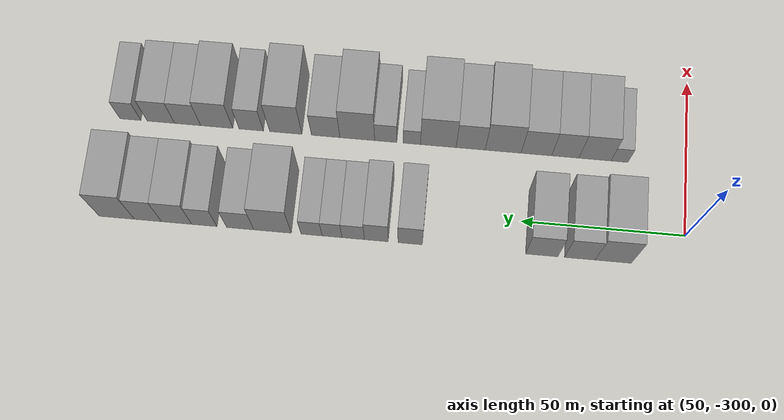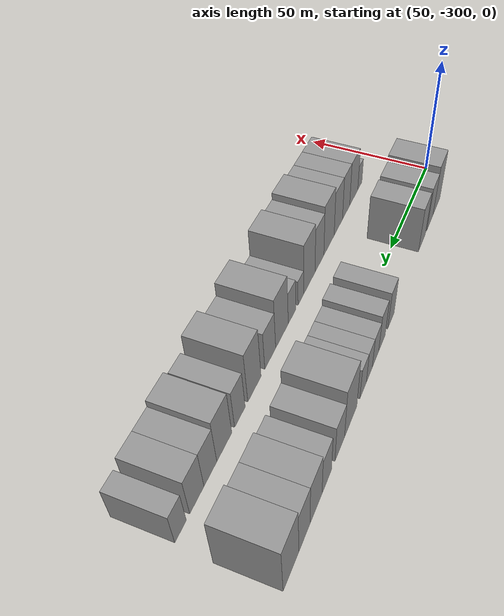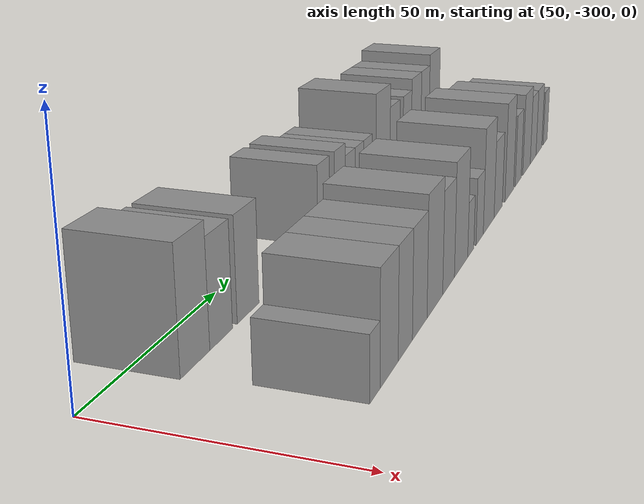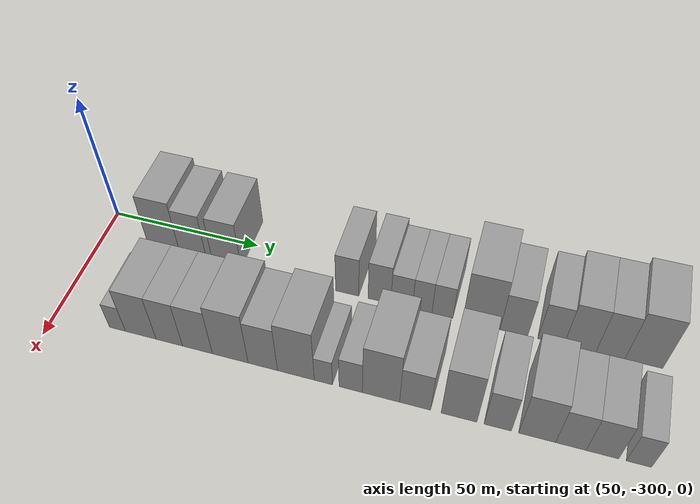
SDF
<sdf version="1.6">
 <world name="default">
  <model name="building_1">
   <static>1</static>
   <pose>50.0000 -278.4930 0 0.000000 0.000000 0.000000</pose>
   <link name="link">
    <pose>0 0 12.00 0 0 0</pose>
    <collision name="collision"><geometry><box><size>20.0000 11.0139 24.0000</size></box></geometry></collision>
    <visual name="visual">
     <cast_shadows>0</cast_shadows>
     <geometry><box><size>20.0000 11.0139 24.0000</size></box></geometry>
     <material>
      <script>
       <uri>model://grey_wall/materials/scripts</uri>
       <uri>model://grey_wall/materials/textures</uri>
       <name>vrc/grey_wall</name>
      </script>
     </material>
    </visual>
   </link>
  </model>
  <model name="building_2">
   <static>1</static>
   <pose>50.0000 -268.3517 0 0.000000 0.000000 0.000000</pose>
   <link name="link">
    <pose>0 0 10.50 0 0 0</pose>
    <collision name="collision"><geometry><box><size>20.0000 9.2688 21.0000</size></box></geometry></collision>
    <visual name="visual">
     <cast_shadows>0</cast_shadows>
     <geometry><box><size>20.0000 9.2688 21.0000</size></box></geometry>
     <material>
      <script>
       <uri>model://grey_wall/materials/scripts</uri>
       <uri>model://grey_wall/materials/textures</uri>
       <name>vrc/grey_wall</name>
      </script>
     </material>
    </visual>
   </link>
  </model>
  <model name="building_3">
   <static>1</static>
   <pose>50.0000 -256.8036 0 0.000000 0.000000 0.000000</pose>
   <link name="link">
    <pose>0 0 10.50 0 0 0</pose>
    <collision name="collision"><geometry><box><size>20.0000 9.8273 21.0000</size></box></geometry></collision>
    <visual name="visual">
     <cast_shadows>0</cast_shadows>
     <geometry><box><size>20.0000 9.8273 21.0000</size></box></geometry>
     <material>
      <script>
       <uri>model://grey_wall/materials/scripts</uri>
       <uri>model://grey_wall/materials/textures</uri>
       <name>vrc/grey_wall</name>
      </script>
     </material>
    </visual>
   </link>
  </model>
  <model name="building_4">
   <static>1</static>
   <pose>50.0000 -216.7169 0 0.000000 0.000000 0.000000</pose>
   <link name="link">
    <pose>0 0 9.00 0 0 0</pose>
    <collision name="collision"><geometry><box><size>20.0000 7.4487 18.0000</size></box></geometry></collision>
    <visual name="visual">
     <cast_shadows>0</cast_shadows>
     <geometry><box><size>20.0000 7.4487 18.0000</size></box></geometry>
     <material>
      <script>
       <uri>model://grey_wall/materials/scripts</uri>
       <uri>model://grey_wall/materials/textures</uri>
       <name>vrc/grey_wall</name>
      </script>
     </material>
    </visual>
   </link>
  </model>
  <model name="building_5">
   <static>1</static>
   <pose>50.0000 -206.3585 0 0.000000 0.000000 0.000000</pose>
   <link name="link">
    <pose>0 0 9.00 0 0 0</pose>
    <collision name="collision"><geometry><box><size>20.0000 7.2680 18.0000</size></box></geometry></collision>
    <visual name="visual">
     <cast_shadows>0</cast_shadows>
     <geometry><box><size>20.0000 7.2680 18.0000</size></box></geometry>
     <material>
      <script>
       <uri>model://grey_wall/materials/scripts</uri>
       <uri>model://grey_wall/materials/textures</uri>
       <name>vrc/grey_wall</name>
      </script>
     </material>
    </visual>
   </link>
  </model>
  <model name="building_6">
   <static>1</static>
   <pose>50.0000 -199.2980 0 0.000000 0.000000 0.000000</pose>
   <link name="link">
    <pose>0 0 7.50 0 0 0</pose>
    <collision name="collision"><geometry><box><size>20.0000 6.8530 15.0000</size></box></geometry></collision>
    <visual name="visual">
     <cast_shadows>0</cast_shadows>
     <geometry><box><size>20.0000 6.8530 15.0000</size></box></geometry>
     <material>
      <script>
       <uri>model://grey_wall/materials/scripts</uri>
       <uri>model://grey_wall/materials/textures</uri>
       <name>vrc/grey_wall</name>
      </script>
     </material>
    </visual>
   </link>
  </model>
  <model name="building_7">
   <static>1</static>
   <pose>50.0000 -192.8294 0 0.000000 0.000000 0.000000</pose>
   <link name="link">
    <pose>0 0 7.50 0 0 0</pose>
    <collision name="collision"><geometry><box><size>20.0000 6.0842 15.0000</size></box></geometry></collision>
    <visual name="visual">
     <cast_shadows>0</cast_shadows>
     <geometry><box><size>20.0000 6.0842 15.0000</size></box></geometry>
     <material>
      <script>
       <uri>model://grey_wall/materials/scripts</uri>
       <uri>model://grey_wall/materials/textures</uri>
       <name>vrc/grey_wall</name>
      </script>
     </material>
    </visual>
   </link>
  </model>
  <model name="building_8">
   <static>1</static>
   <pose>50.0000 -186.5375 0 0.000000 0.000000 0.000000</pose>
   <link name="link">
    <pose>0 0 7.50 0 0 0</pose>
    <collision name="collision"><geometry><box><size>20.0000 6.4996 15.0000</size></box></geometry></collision>
    <visual name="visual">
     <cast_shadows>0</cast_shadows>
     <geometry><box><size>20.0000 6.4996 15.0000</size></box></geometry>
     <material>
      <script>
       <uri>model://grey_wall/materials/scripts</uri>
       <uri>model://grey_wall/materials/textures</uri>
       <name>vrc/grey_wall</name>
      </script>
     </material>
    </visual>
   </link>
  </model>
  <model name="building_9">
   <static>1</static>
   <pose>50.0000 -174.5439 0 0.000000 0.000000 0.000000</pose>
   <link name="link">
    <pose>0 0 12.00 0 0 0</pose>
    <collision name="collision"><geometry><box><size>20.0000 11.4876 24.0000</size></box></geometry></collision>
    <visual name="visual">
     <cast_shadows>0</cast_shadows>
     <geometry><box><size>20.0000 11.4876 24.0000</size></box></geometry>
     <material>
      <script>
       <uri>model://grey_wall/materials/scripts</uri>
       <uri>model://grey_wall/materials/textures</uri>
       <name>vrc/grey_wall</name>
      </script>
     </material>
    </visual>
   </link>
  </model>
  <model name="building_10">
   <static>1</static>
   <pose>50.0000 -164.6084 0 0.000000 0.000000 0.000000</pose>
   <link name="link">
    <pose>0 0 9.00 0 0 0</pose>
    <collision name="collision"><geometry><box><size>20.0000 8.3834 18.0000</size></box></geometry></collision>
    <visual name="visual">
     <cast_shadows>0</cast_shadows>
     <geometry><box><size>20.0000 8.3834 18.0000</size></box></geometry>
     <material>
      <script>
       <uri>model://grey_wall/materials/scripts</uri>
       <uri>model://grey_wall/materials/textures</uri>
       <name>vrc/grey_wall</name>
      </script>
     </material>
    </visual>
   </link>
  </model>
  <model name="building_11">
   <static>1</static>
   <pose>50.0000 -153.5251 0 0.000000 0.000000 0.000000</pose>
   <link name="link">
    <pose>0 0 9.00 0 0 0</pose>
    <collision name="collision"><geometry><box><size>20.0000 7.7832 18.0000</size></box></geometry></collision>
    <visual name="visual">
     <cast_shadows>0</cast_shadows>
     <geometry><box><size>20.0000 7.7832 18.0000</size></box></geometry>
     <material>
      <script>
       <uri>model://grey_wall/materials/scripts</uri>
       <uri>model://grey_wall/materials/textures</uri>
       <name>vrc/grey_wall</name>
      </script>
     </material>
    </visual>
   </link>
  </model>
  <model name="building_12">
   <static>1</static>
   <pose>50.0000 -144.9641 0 0.000000 0.000000 0.000000</pose>
   <link name="link">
    <pose>0 0 10.50 0 0 0</pose>
    <collision name="collision"><geometry><box><size>20.0000 9.3388 21.0000</size></box></geometry></collision>
    <visual name="visual">
     <cast_shadows>0</cast_shadows>
     <geometry><box><size>20.0000 9.3388 21.0000</size></box></geometry>
     <material>
      <script>
       <uri>model://grey_wall/materials/scripts</uri>
       <uri>model://grey_wall/materials/textures</uri>
       <name>vrc/grey_wall</name>
      </script>
     </material>
    </visual>
   </link>
  </model>
  <model name="building_13">
   <static>1</static>
   <pose>50.0000 -136.0853 0 0.000000 0.000000 0.000000</pose>
   <link name="link">
    <pose>0 0 10.50 0 0 0</pose>
    <collision name="collision"><geometry><box><size>20.0000 8.4189 21.0000</size></box></geometry></collision>
    <visual name="visual">
     <cast_shadows>0</cast_shadows>
     <geometry><box><size>20.0000 8.4189 21.0000</size></box></geometry>
     <material>
      <script>
       <uri>model://grey_wall/materials/scripts</uri>
       <uri>model://grey_wall/materials/textures</uri>
       <name>vrc/grey_wall</name>
      </script>
     </material>
    </visual>
   </link>
  </model>
  <model name="building_14">
   <static>1</static>
   <pose>50.0000 -126.4248 0 0.000000 0.000000 0.000000</pose>
   <link name="link">
    <pose>0 0 12.00 0 0 0</pose>
    <collision name="collision"><geometry><box><size>20.0000 10.9022 24.0000</size></box></geometry></collision>
    <visual name="visual">
     <cast_shadows>0</cast_shadows>
     <geometry><box><size>20.0000 10.9022 24.0000</size></box></geometry>
     <material>
      <script>
       <uri>model://grey_wall/materials/scripts</uri>
       <uri>model://grey_wall/materials/textures</uri>
       <name>vrc/grey_wall</name>
      </script>
     </material>
    </visual>
   </link>
  </model>
  <model name="building_62">
   <static>1</static>
   <pose>82.0000 -279.3478 0 0.000000 0.000000 0.000000</pose>
   <link name="link">
    <pose>0 0 6.00 0 0 0</pose>
    <collision name="collision"><geometry><box><size>20.0000 5.3044 12.0000</size></box></geometry></collision>
    <visual name="visual">
     <cast_shadows>0</cast_shadows>
     <geometry><box><size>20.0000 5.3044 12.0000</size></box></geometry>
     <material>
      <script>
       <uri>model://grey_wall/materials/scripts</uri>
       <uri>model://grey_wall/materials/textures</uri>
       <name>vrc/grey_wall</name>
      </script>
     </material>
    </visual>
   </link>
  </model>
  <model name="building_63">
   <static>1</static>
   <pose>82.0000 -271.6975 0 0.000000 0.000000 0.000000</pose>
   <link name="link">
    <pose>0 0 10.50 0 0 0</pose>
    <collision name="collision"><geometry><box><size>20.0000 9.9961 21.0000</size></box></geometry></collision>
    <visual name="visual">
     <cast_shadows>0</cast_shadows>
     <geometry><box><size>20.0000 9.9961 21.0000</size></box></geometry>
     <material>
      <script>
       <uri>model://grey_wall/materials/scripts</uri>
       <uri>model://grey_wall/materials/textures</uri>
       <name>vrc/grey_wall</name>
      </script>
     </material>
    </visual>
   </link>
  </model>
  <model name="building_64">
   <static>1</static>
   <pose>82.0000 -262.4329 0 0.000000 0.000000 0.000000</pose>
   <link name="link">
    <pose>0 0 10.50 0 0 0</pose>
    <collision name="collision"><geometry><box><size>20.0000 8.5331 21.0000</size></box></geometry></collision>
    <visual name="visual">
     <cast_shadows>0</cast_shadows>
     <geometry><box><size>20.0000 8.5331 21.0000</size></box></geometry>
     <material>
      <script>
       <uri>model://grey_wall/materials/scripts</uri>
       <uri>model://grey_wall/materials/textures</uri>
       <name>vrc/grey_wall</name>
      </script>
     </material>
    </visual>
   </link>
  </model>
  <model name="building_65">
   <static>1</static>
   <pose>82.0000 -253.4055 0 0.000000 0.000000 0.000000</pose>
   <link name="link">
    <pose>0 0 10.50 0 0 0</pose>
    <collision name="collision"><geometry><box><size>20.0000 9.5218 21.0000</size></box></geometry></collision>
    <visual name="visual">
     <cast_shadows>0</cast_shadows>
     <geometry><box><size>20.0000 9.5218 21.0000</size></box></geometry>
     <material>
      <script>
       <uri>model://grey_wall/materials/scripts</uri>
       <uri>model://grey_wall/materials/textures</uri>
       <name>vrc/grey_wall</name>
      </script>
     </material>
    </visual>
   </link>
  </model>
  <model name="building_66">
   <static>1</static>
   <pose>82.0000 -243.0449 0 0.000000 0.000000 0.000000</pose>
   <link name="link">
    <pose>0 0 12.00 0 0 0</pose>
    <collision name="collision"><geometry><box><size>20.0000 11.1993 24.0000</size></box></geometry></collision>
    <visual name="visual">
     <cast_shadows>0</cast_shadows>
     <geometry><box><size>20.0000 11.1993 24.0000</size></box></geometry>
     <material>
      <script>
       <uri>model://grey_wall/materials/scripts</uri>
       <uri>model://grey_wall/materials/textures</uri>
       <name>vrc/grey_wall</name>
      </script>
     </material>
    </visual>
   </link>
  </model>
  <model name="building_67">
   <static>1</static>
   <pose>82.0000 -232.8894 0 0.000000 0.000000 0.000000</pose>
   <link name="link">
    <pose>0 0 10.50 0 0 0</pose>
    <collision name="collision"><geometry><box><size>20.0000 9.1117 21.0000</size></box></geometry></collision>
    <visual name="visual">
     <cast_shadows>0</cast_shadows>
     <geometry><box><size>20.0000 9.1117 21.0000</size></box></geometry>
     <material>
      <script>
       <uri>model://grey_wall/materials/scripts</uri>
       <uri>model://grey_wall/materials/textures</uri>
       <name>vrc/grey_wall</name>
      </script>
     </material>
    </visual>
   </link>
  </model>
  <model name="building_68">
   <static>1</static>
   <pose>82.0000 -222.7405 0 0.000000 0.000000 0.000000</pose>
   <link name="link">
    <pose>0 0 12.00 0 0 0</pose>
    <collision name="collision"><geometry><box><size>20.0000 11.1861 24.0000</size></box></geometry></collision>
    <visual name="visual">
     <cast_shadows>0</cast_shadows>
     <geometry><box><size>20.0000 11.1861 24.0000</size></box></geometry>
     <material>
      <script>
       <uri>model://grey_wall/materials/scripts</uri>
       <uri>model://grey_wall/materials/textures</uri>
       <name>vrc/grey_wall</name>
      </script>
     </material>
    </visual>
   </link>
  </model>
  <model name="building_69">
   <static>1</static>
   <pose>82.0000 -214.4171 0 0.000000 0.000000 0.000000</pose>
   <link name="link">
    <pose>0 0 6.00 0 0 0</pose>
    <collision name="collision"><geometry><box><size>20.0000 5.4606 12.0000</size></box></geometry></collision>
    <visual name="visual">
     <cast_shadows>0</cast_shadows>
     <geometry><box><size>20.0000 5.4606 12.0000</size></box></geometry>
     <material>
      <script>
       <uri>model://grey_wall/materials/scripts</uri>
       <uri>model://grey_wall/materials/textures</uri>
       <name>vrc/grey_wall</name>
      </script>
     </material>
    </visual>
   </link>
  </model>
  <model name="building_70">
   <static>1</static>
   <pose>82.0000 -206.2249 0 0.000000 0.000000 0.000000</pose>
   <link name="link">
    <pose>0 0 7.50 0 0 0</pose>
    <collision name="collision"><geometry><box><size>20.0000 6.9239 15.0000</size></box></geometry></collision>
    <visual name="visual">
     <cast_shadows>0</cast_shadows>
     <geometry><box><size>20.0000 6.9239 15.0000</size></box></geometry>
     <material>
      <script>
       <uri>model://grey_wall/materials/scripts</uri>
       <uri>model://grey_wall/materials/textures</uri>
       <name>vrc/grey_wall</name>
      </script>
     </material>
    </visual>
   </link>
  </model>
  <model name="building_71">
   <static>1</static>
   <pose>82.0000 -197.2889 0 0.000000 0.000000 0.000000</pose>
   <link name="link">
    <pose>0 0 12.00 0 0 0</pose>
    <collision name="collision"><geometry><box><size>20.0000 10.9481 24.0000</size></box></geometry></collision>
    <visual name="visual">
     <cast_shadows>0</cast_shadows>
     <geometry><box><size>20.0000 10.9481 24.0000</size></box></geometry>
     <material>
      <script>
       <uri>model://grey_wall/materials/scripts</uri>
       <uri>model://grey_wall/materials/textures</uri>
       <name>vrc/grey_wall</name>
      </script>
     </material>
    </visual>
   </link>
  </model>
  <model name="building_72">
   <static>1</static>
   <pose>82.0000 -187.3232 0 0.000000 0.000000 0.000000</pose>
   <link name="link">
    <pose>0 0 9.00 0 0 0</pose>
    <collision name="collision"><geometry><box><size>20.0000 8.9833 18.0000</size></box></geometry></collision>
    <visual name="visual">
     <cast_shadows>0</cast_shadows>
     <geometry><box><size>20.0000 8.9833 18.0000</size></box></geometry>
     <material>
      <script>
       <uri>model://grey_wall/materials/scripts</uri>
       <uri>model://grey_wall/materials/textures</uri>
       <name>vrc/grey_wall</name>
      </script>
     </material>
    </visual>
   </link>
  </model>
  <model name="building_73">
   <static>1</static>
   <pose>82.0000 -174.7346 0 0.000000 0.000000 0.000000</pose>
   <link name="link">
    <pose>0 0 12.00 0 0 0</pose>
    <collision name="collision"><geometry><box><size>20.0000 10.1937 24.0000</size></box></geometry></collision>
    <visual name="visual">
     <cast_shadows>0</cast_shadows>
     <geometry><box><size>20.0000 10.1937 24.0000</size></box></geometry>
     <material>
      <script>
       <uri>model://grey_wall/materials/scripts</uri>
       <uri>model://grey_wall/materials/textures</uri>
       <name>vrc/grey_wall</name>
      </script>
     </material>
    </visual>
   </link>
  </model>
  <model name="building_74">
   <static>1</static>
   <pose>82.0000 -163.8076 0 0.000000 0.000000 0.000000</pose>
   <link name="link">
    <pose>0 0 9.00 0 0 0</pose>
    <collision name="collision"><geometry><box><size>20.0000 7.6604 18.0000</size></box></geometry></collision>
    <visual name="visual">
     <cast_shadows>0</cast_shadows>
     <geometry><box><size>20.0000 7.6604 18.0000</size></box></geometry>
     <material>
      <script>
       <uri>model://grey_wall/materials/scripts</uri>
       <uri>model://grey_wall/materials/textures</uri>
       <name>vrc/grey_wall</name>
      </script>
     </material>
    </visual>
   </link>
  </model>
  <model name="building_75">
   <static>1</static>
   <pose>82.0000 -152.8807 0 0.000000 0.000000 0.000000</pose>
   <link name="link">
    <pose>0 0 10.50 0 0 0</pose>
    <collision name="collision"><geometry><box><size>20.0000 10.1933 21.0000</size></box></geometry></collision>
    <visual name="visual">
     <cast_shadows>0</cast_shadows>
     <geometry><box><size>20.0000 10.1933 21.0000</size></box></geometry>
     <material>
      <script>
       <uri>model://grey_wall/materials/scripts</uri>
       <uri>model://grey_wall/materials/textures</uri>
       <name>vrc/grey_wall</name>
      </script>
     </material>
    </visual>
   </link>
  </model>
  <model name="building_76">
   <static>1</static>
   <pose>82.0000 -143.6395 0 0.000000 0.000000 0.000000</pose>
   <link name="link">
    <pose>0 0 9.00 0 0 0</pose>
    <collision name="collision"><geometry><box><size>20.0000 8.2890 18.0000</size></box></geometry></collision>
    <visual name="visual">
     <cast_shadows>0</cast_shadows>
     <geometry><box><size>20.0000 8.2890 18.0000</size></box></geometry>
     <material>
      <script>
       <uri>model://grey_wall/materials/scripts</uri>
       <uri>model://grey_wall/materials/textures</uri>
       <name>vrc/grey_wall</name>
      </script>
     </material>
    </visual>
   </link>
  </model>
  <model name="building_77">
   <static>1</static>
   <pose>82.0000 -135.1309 0 0.000000 0.000000 0.000000</pose>
   <link name="link">
    <pose>0 0 9.00 0 0 0</pose>
    <collision name="collision"><geometry><box><size>20.0000 8.7281 18.0000</size></box></geometry></collision>
    <visual name="visual">
     <cast_shadows>0</cast_shadows>
     <geometry><box><size>20.0000 8.7281 18.0000</size></box></geometry>
     <material>
      <script>
       <uri>model://grey_wall/materials/scripts</uri>
       <uri>model://grey_wall/materials/textures</uri>
       <name>vrc/grey_wall</name>
      </script>
     </material>
    </visual>
   </link>
  </model>
  <model name="building_78">
   <static>1</static>
   <pose>82.0000 -125.4253 0 0.000000 0.000000 0.000000</pose>
   <link name="link">
    <pose>0 0 7.50 0 0 0</pose>
    <collision name="collision"><geometry><box><size>20.0000 6.6832 15.0000</size></box></geometry></collision>
    <visual name="visual">
     <cast_shadows>0</cast_shadows>
     <geometry><box><size>20.0000 6.6832 15.0000</size></box></geometry>
     <material>
      <script>
       <uri>model://grey_wall/materials/scripts</uri>
       <uri>model://grey_wall/materials/textures</uri>
       <name>vrc/grey_wall</name>
      </script>
     </material>
    </visual>
   </link>
  </model>
 </world>
</sdf>
